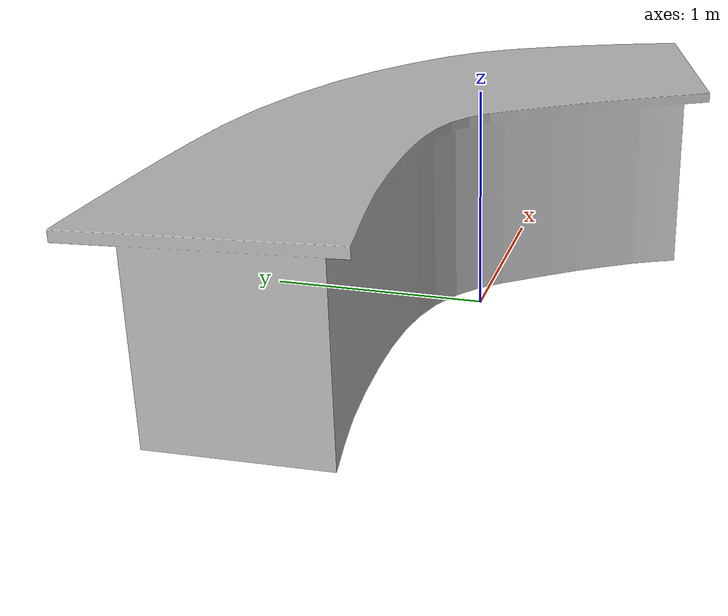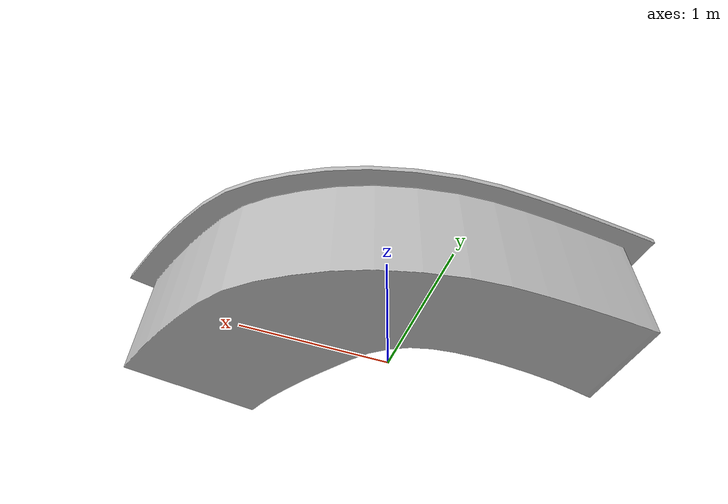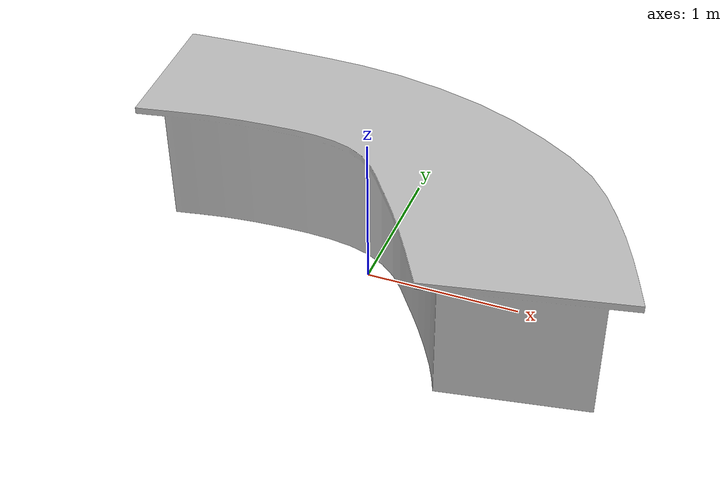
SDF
<?xml version="1.0" ?>
<sdf version="1.6">
  <model name="officeDeskCurved">
    <static>true</static>
    <link name="link">
      <collision name="collision">
        <geometry>
          <mesh>
            <scale>1 1 1</scale>
            <uri>model://officeDeskCurved/meshes/officeDeskCurved.dae</uri>
          </mesh>
        </geometry>
      </collision>
      <visual name="visual">
        <geometry>
          <mesh>
            <scale>1 1 1</scale>
            <uri>model://officeDeskCurved/meshes/officeDeskCurved.dae</uri>
          </mesh>
        </geometry>
      </visual>
    </link>
  </model>
</sdf>
